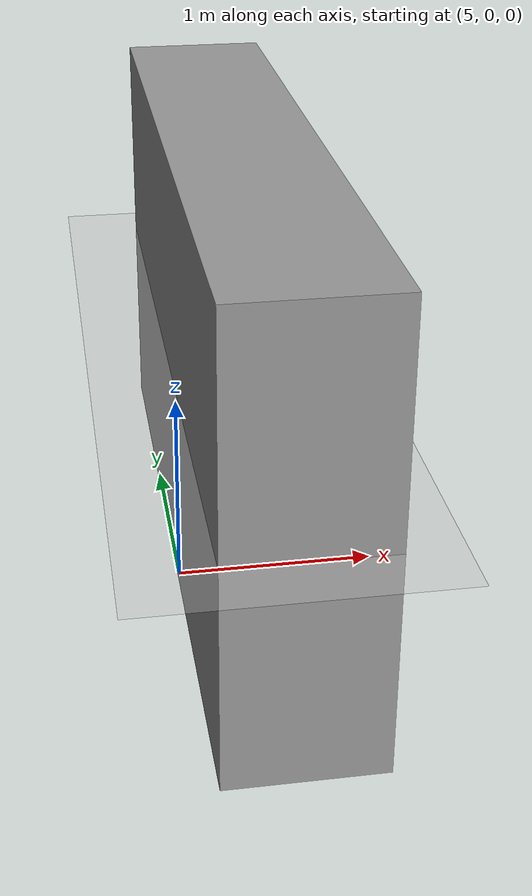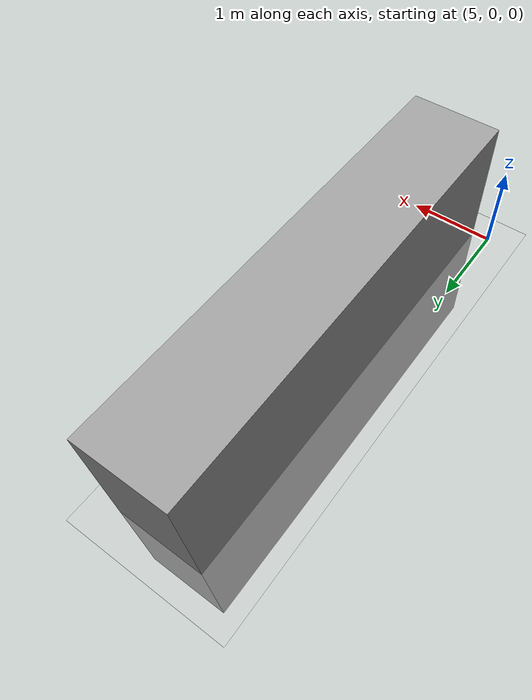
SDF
<?xml version="1.0" ?>
<sdf version='1.4'>
  <world name='default'>

    <physics type='ode'>
      <max_step_size>0.001</max_step_size>
      <real_time_factor>1</real_time_factor>
      <real_time_update_rate>1000</real_time_update_rate>
      <magnetic_field>34 0 -36</magnetic_field>
      <gravity>0 0 -9.8</gravity>
    </physics>

    <spherical_coordinates>
      <surface_model>EARTH_WGS84</surface_model>
      <latitude_deg>0</latitude_deg>
      <longitude_deg>0</longitude_deg>
      <elevation>0</elevation>
      <heading_deg>0</heading_deg>
    </spherical_coordinates>

    <!-- A global light source -->
   <scene>
      <sky>
        <clouds>
          <speed>12</speed>
        </clouds>
      </sky>
   </scene>

   <include>
     <uri>model://sun</uri>
   </include>

    <!-- A ground plane -->
    <include>
      <uri>model://ground_plane</uri>
    </include>

    <model name='unit_box'>
      <pose>5.7 2.5 0 0 -0 0</pose>
      <link name='link'>
        <inertial>
          <mass>1</mass>
          <inertia>
            <ixx>0.166667</ixx>
            <ixy>0</ixy>
            <ixz>0</ixz>
            <iyy>0.166667</iyy>
            <iyz>0</iyz>
            <izz>0.166667</izz>
          </inertia>
          <pose>0 0 0 0 -0 0</pose>
        </inertial>
        <collision name='collision'>
          <geometry>
            <box>
              <size>1 5 3</size>
            </box>
          </geometry>
          <max_contacts>10</max_contacts>
          <surface>
            <contact>
              <ode/>
            </contact>
            <bounce/>
            <friction>
              <torsional>
                <ode/>
              </torsional>
              <ode/>
            </friction>
          </surface>
        </collision>
        <visual name='visual'>
          <geometry>
            <box>
              <size>1 5 3</size>
            </box>
          </geometry>
          <material>
            <script>
              <name>Gazebo/Grey</name>
              <uri>file://media/materials/scripts/gazebo.material</uri>
            </script>
          </material>
        </visual>
        <self_collide>0</self_collide>
        <enable_wind>0</enable_wind>
        <kinematic>0</kinematic>
      </link>
    </model>

  </world>
</sdf>
